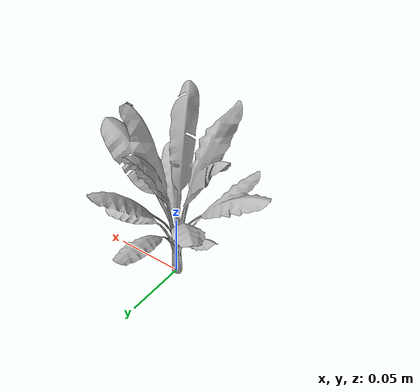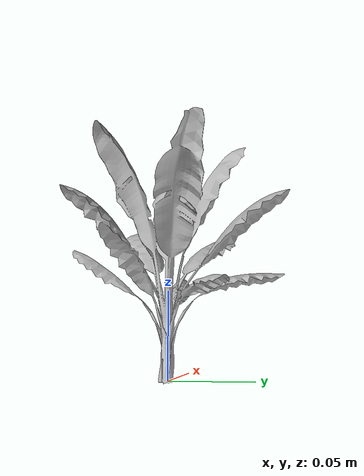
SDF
<?xml version="1.0" ?>
<sdf version="1.6">
  <model name="brotinho">
    <static>true</static>
    <link name="link">
      <collision name="collision">
        <geometry>
          <mesh>
            <uri>model://brotinho/meshes/format1.dae</uri>
          </mesh>
        </geometry>
      </collision>
      <visual name="visual">
        <geometry>
          <mesh>
            <uri>model://brotinho/meshes/format1.dae</uri>
          </mesh>
        </geometry>
      </visual>
    </link>
  </model>
</sdf>
